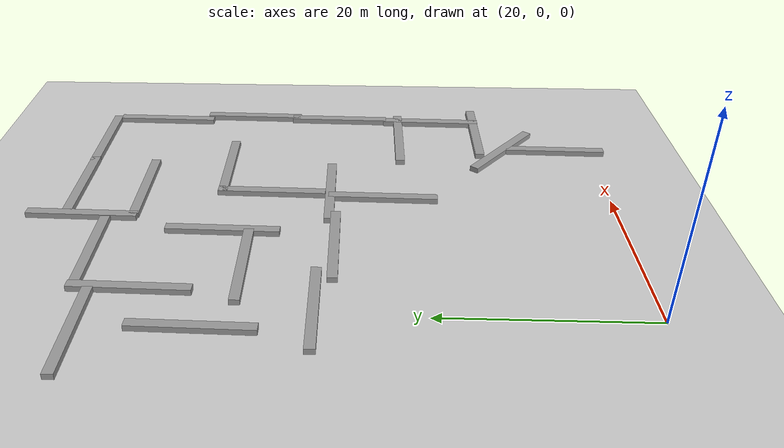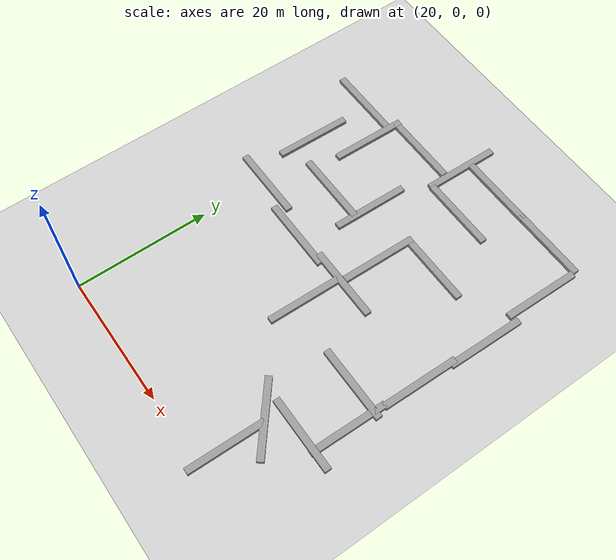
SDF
<sdf version="1.6">
 <world name="default">
  <model name="ground_plane">
   <static>1</static>
   <link name="link">
    <collision name="collision">
     <geometry><plane><normal>0 0 1</normal><size>100 100</size></plane></geometry>
     <surface><friction><ode><mu>100</mu><mu2>50</mu2></ode></friction></surface>
    </collision>
    <visual name="visual">
     <cast_shadows>0</cast_shadows>
     <geometry><plane><normal>0 0 1</normal><size>100 100</size></plane></geometry>
     <material>
      <script><uri>file://media/materials/scripts/gazebo.material</uri><name>Gazebo/Grey</name></script>
     </material>
    </visual>
   </link>
  </model>
  <model name="unit_box_0_static_clone_17">
   <link name="link">
    <inertial>
     <mass>11.3696</mass>
     <inertia><ixx>1.89495</ixx><ixy>0</ixy><ixz>0</ixz><iyy>123.426</iyy><iyz>0</iyz><izz>123.426</izz></inertia>
    </inertial>
    <kinematic>1</kinematic>
    <visual name="visual">
     <geometry><box><size>11.3696 1 1</size></box></geometry>
     <material>
      <script><name>Gazebo/Grey</name><uri>file://media/materials/scripts/gazebo.material</uri></script>
      <ambient>0.3 0.3 0.3 1</ambient>
      <diffuse>0.7 0.7 0.7 1</diffuse>
      <specular>0.01 0.01 0.01 1</specular>
      <emissive>0 0 0 1</emissive>
     </material>
    </visual>
    <collision name="collision">
     <geometry><box><size>11.3696 1 1</size></box></geometry>
     <surface>
      <friction>
       <ode><mu>1</mu><mu2>1</mu2><fdir1>0 0 0</fdir1><slip1>0</slip1><slip2>0</slip2></ode>
       <torsional>
        <coefficient>1</coefficient>
        <patch_radius>0</patch_radius>
        <surface_radius>0</surface_radius>
        <use_patch_radius>1</use_patch_radius>
        <ode><slip>0</slip></ode>
       </torsional>
      </friction>
      <bounce><restitution_coefficient>0</restitution_coefficient><threshold>1e+06</threshold></bounce>
      <contact>
       <collide_without_contact>0</collide_without_contact>
       <collide_without_contact_bitmask>1</collide_without_contact_bitmask>
       <collide_bitmask>1</collide_bitmask>
       <ode>
        <soft_cfm>0</soft_cfm>
        <soft_erp>0.2</soft_erp>
        <kp>1e+13</kp>
        <kd>1</kd>
        <max_vel>0.01</max_vel>
        <min_depth>0</min_depth>
       </ode>
       <bullet>
        <split_impulse>1</split_impulse>
        <split_impulse_penetration_threshold>-0.01</split_impulse_penetration_threshold>
        <soft_cfm>0</soft_cfm>
        <soft_erp>0.2</soft_erp>
        <kp>1e+13</kp>
        <kd>1</kd>
       </bullet>
      </contact>
     </surface>
    </collision>
   </link>
   <static>1</static>
   <pose>40.5658 29.2581 0 0 -0 0</pose>
  </model>
  <model name="unit_box_0_static_clone_18">
   <link name="link">
    <inertial>
     <mass>11.3696</mass>
     <inertia><ixx>1.89495</ixx><ixy>0</ixy><ixz>0</ixz><iyy>123.426</iyy><iyz>0</iyz><izz>123.426</izz></inertia>
    </inertial>
    <kinematic>1</kinematic>
    <visual name="visual">
     <geometry><box><size>11.3696 1 1</size></box></geometry>
     <material>
      <script><name>Gazebo/Grey</name><uri>file://media/materials/scripts/gazebo.material</uri></script>
      <ambient>0.3 0.3 0.3 1</ambient>
      <diffuse>0.7 0.7 0.7 1</diffuse>
      <specular>0.01 0.01 0.01 1</specular>
      <emissive>0 0 0 1</emissive>
     </material>
    </visual>
    <collision name="collision">
     <geometry><box><size>11.3696 1 1</size></box></geometry>
     <surface>
      <friction>
       <ode><mu>1</mu><mu2>1</mu2><fdir1>0 0 0</fdir1><slip1>0</slip1><slip2>0</slip2></ode>
       <torsional>
        <coefficient>1</coefficient>
        <patch_radius>0</patch_radius>
        <surface_radius>0</surface_radius>
        <use_patch_radius>1</use_patch_radius>
        <ode><slip>0</slip></ode>
       </torsional>
      </friction>
      <bounce><restitution_coefficient>0</restitution_coefficient><threshold>1e+06</threshold></bounce>
      <contact>
       <collide_without_contact>0</collide_without_contact>
       <collide_without_contact_bitmask>1</collide_without_contact_bitmask>
       <collide_bitmask>1</collide_bitmask>
       <ode>
        <soft_cfm>0</soft_cfm>
        <soft_erp>0.2</soft_erp>
        <kp>1e+13</kp>
        <kd>1</kd>
        <max_vel>0.01</max_vel>
        <min_depth>0</min_depth>
       </ode>
       <bullet>
        <split_impulse>1</split_impulse>
        <split_impulse_penetration_threshold>-0.01</split_impulse_penetration_threshold>
        <soft_cfm>0</soft_cfm>
        <soft_erp>0.2</soft_erp>
        <kp>1e+13</kp>
        <kd>1</kd>
       </bullet>
      </contact>
     </surface>
    </collision>
   </link>
   <static>1</static>
   <pose>30.56 28.5679 0 0 -0 0</pose>
  </model>
  <model name="unit_box_0_static_clone_19">
   <link name="link">
    <inertial>
     <mass>11.3696</mass>
     <inertia><ixx>1.89495</ixx><ixy>0</ixy><ixz>0</ixz><iyy>123.426</iyy><iyz>0</iyz><izz>123.426</izz></inertia>
    </inertial>
    <kinematic>1</kinematic>
    <visual name="visual">
     <geometry><box><size>11.3696 1 1</size></box></geometry>
     <material>
      <script><name>Gazebo/Grey</name><uri>file://media/materials/scripts/gazebo.material</uri></script>
      <ambient>0.3 0.3 0.3 1</ambient>
      <diffuse>0.7 0.7 0.7 1</diffuse>
      <specular>0.01 0.01 0.01 1</specular>
      <emissive>0 0 0 1</emissive>
     </material>
    </visual>
    <collision name="collision">
     <geometry><box><size>11.3696 1 1</size></box></geometry>
     <surface>
      <friction>
       <ode><mu>1</mu><mu2>1</mu2><fdir1>0 0 0</fdir1><slip1>0</slip1><slip2>0</slip2></ode>
       <torsional>
        <coefficient>1</coefficient>
        <patch_radius>0</patch_radius>
        <surface_radius>0</surface_radius>
        <use_patch_radius>1</use_patch_radius>
        <ode><slip>0</slip></ode>
       </torsional>
      </friction>
      <bounce><restitution_coefficient>0</restitution_coefficient><threshold>1e+06</threshold></bounce>
      <contact>
       <collide_without_contact>0</collide_without_contact>
       <collide_without_contact_bitmask>1</collide_without_contact_bitmask>
       <collide_bitmask>1</collide_bitmask>
       <ode>
        <soft_cfm>0</soft_cfm>
        <soft_erp>0.2</soft_erp>
        <kp>1e+13</kp>
        <kd>1</kd>
        <max_vel>0.01</max_vel>
        <min_depth>0</min_depth>
       </ode>
       <bullet>
        <split_impulse>1</split_impulse>
        <split_impulse_penetration_threshold>-0.01</split_impulse_penetration_threshold>
        <soft_cfm>0</soft_cfm>
        <soft_erp>0.2</soft_erp>
        <kp>1e+13</kp>
        <kd>1</kd>
       </bullet>
      </contact>
     </surface>
    </collision>
   </link>
   <static>1</static>
   <pose>20.7983 30.0679 0 0 -0 0</pose>
  </model>
  <model name="unit_box_0_static_clone_35_clone_11">
   <link name="link">
    <inertial>
     <mass>11.3696</mass>
     <inertia><ixx>1.89495</ixx><ixy>0</ixy><ixz>0</ixz><iyy>123.426</iyy><iyz>0</iyz><izz>123.426</izz></inertia>
    </inertial>
    <kinematic>1</kinematic>
    <visual name="visual">
     <geometry><box><size>11.3696 1 1</size></box></geometry>
     <material>
      <script><name>Gazebo/Grey</name><uri>file://media/materials/scripts/gazebo.material</uri></script>
      <ambient>0.3 0.3 0.3 1</ambient>
      <diffuse>0.7 0.7 0.7 1</diffuse>
      <specular>0.01 0.01 0.01 1</specular>
      <emissive>0 0 0 1</emissive>
     </material>
    </visual>
    <collision name="collision">
     <geometry><box><size>11.3696 1 1</size></box></geometry>
     <surface>
      <friction>
       <ode><mu>1</mu><mu2>1</mu2><fdir1>0 0 0</fdir1><slip1>0</slip1><slip2>0</slip2></ode>
       <torsional>
        <coefficient>1</coefficient>
        <patch_radius>0</patch_radius>
        <surface_radius>0</surface_radius>
        <use_patch_radius>1</use_patch_radius>
        <ode><slip>0</slip></ode>
       </torsional>
      </friction>
      <bounce><restitution_coefficient>0</restitution_coefficient><threshold>1e+06</threshold></bounce>
      <contact>
       <collide_without_contact>0</collide_without_contact>
       <collide_without_contact_bitmask>1</collide_without_contact_bitmask>
       <collide_bitmask>1</collide_bitmask>
       <ode>
        <soft_cfm>0</soft_cfm>
        <soft_erp>0.2</soft_erp>
        <kp>1e+13</kp>
        <kd>1</kd>
        <max_vel>0.01</max_vel>
        <min_depth>0</min_depth>
       </ode>
       <bullet>
        <split_impulse>1</split_impulse>
        <split_impulse_penetration_threshold>-0.01</split_impulse_penetration_threshold>
        <soft_cfm>0</soft_cfm>
        <soft_erp>0.2</soft_erp>
        <kp>1e+13</kp>
        <kd>1</kd>
       </bullet>
      </contact>
     </surface>
    </collision>
   </link>
   <static>1</static>
   <pose>39.5419 23.7447 0 0 0 -1.5917</pose>
  </model>
  <model name="unit_box_0_static_clone_35_clone_12">
   <link name="link">
    <inertial>
     <mass>11.3696</mass>
     <inertia><ixx>1.89495</ixx><ixy>0</ixy><ixz>0</ixz><iyy>123.426</iyy><iyz>0</iyz><izz>123.426</izz></inertia>
    </inertial>
    <kinematic>1</kinematic>
    <visual name="visual">
     <geometry><box><size>11.3696 1 1</size></box></geometry>
     <material>
      <script><name>Gazebo/Grey</name><uri>file://media/materials/scripts/gazebo.material</uri></script>
      <ambient>0.3 0.3 0.3 1</ambient>
      <diffuse>0.7 0.7 0.7 1</diffuse>
      <specular>0.01 0.01 0.01 1</specular>
      <emissive>0 0 0 1</emissive>
     </material>
    </visual>
    <collision name="collision">
     <geometry><box><size>11.3696 1 1</size></box></geometry>
     <surface>
      <friction>
       <ode><mu>1</mu><mu2>1</mu2><fdir1>0 0 0</fdir1><slip1>0</slip1><slip2>0</slip2></ode>
       <torsional>
        <coefficient>1</coefficient>
        <patch_radius>0</patch_radius>
        <surface_radius>0</surface_radius>
        <use_patch_radius>1</use_patch_radius>
        <ode><slip>0</slip></ode>
       </torsional>
      </friction>
      <bounce><restitution_coefficient>0</restitution_coefficient><threshold>1e+06</threshold></bounce>
      <contact>
       <collide_without_contact>0</collide_without_contact>
       <collide_without_contact_bitmask>1</collide_without_contact_bitmask>
       <collide_bitmask>1</collide_bitmask>
       <ode>
        <soft_cfm>0</soft_cfm>
        <soft_erp>0.2</soft_erp>
        <kp>1e+13</kp>
        <kd>1</kd>
        <max_vel>0.01</max_vel>
        <min_depth>0</min_depth>
       </ode>
       <bullet>
        <split_impulse>1</split_impulse>
        <split_impulse_penetration_threshold>-0.01</split_impulse_penetration_threshold>
        <soft_cfm>0</soft_cfm>
        <soft_erp>0.2</soft_erp>
        <kp>1e+13</kp>
        <kd>1</kd>
       </bullet>
      </contact>
     </surface>
    </collision>
   </link>
   <static>1</static>
   <pose>50.6137 4.07902 0 0 0 -1.5917</pose>
  </model>
  <model name="unit_box_0_static_clone_35_clone_20_clone">
   <link name="link">
    <inertial>
     <mass>11.3696</mass>
     <inertia><ixx>1.89495</ixx><ixy>0</ixy><ixz>0</ixz><iyy>123.426</iyy><iyz>0</iyz><izz>123.426</izz></inertia>
    </inertial>
    <kinematic>1</kinematic>
    <visual name="visual">
     <geometry><box><size>11.3696 1 1</size></box></geometry>
     <material>
      <script><name>Gazebo/Grey</name><uri>file://media/materials/scripts/gazebo.material</uri></script>
      <ambient>0.3 0.3 0.3 1</ambient>
      <diffuse>0.7 0.7 0.7 1</diffuse>
      <specular>0.01 0.01 0.01 1</specular>
      <emissive>0 0 0 1</emissive>
     </material>
    </visual>
    <collision name="collision">
     <geometry><box><size>11.3696 1 1</size></box></geometry>
     <surface>
      <friction>
       <ode><mu>1</mu><mu2>1</mu2><fdir1>0 0 0</fdir1><slip1>0</slip1><slip2>0</slip2></ode>
       <torsional>
        <coefficient>1</coefficient>
        <patch_radius>0</patch_radius>
        <surface_radius>0</surface_radius>
        <use_patch_radius>1</use_patch_radius>
        <ode><slip>0</slip></ode>
       </torsional>
      </friction>
      <bounce><restitution_coefficient>0</restitution_coefficient><threshold>1e+06</threshold></bounce>
      <contact>
       <collide_without_contact>0</collide_without_contact>
       <collide_without_contact_bitmask>1</collide_without_contact_bitmask>
       <collide_bitmask>1</collide_bitmask>
       <ode>
        <soft_cfm>0</soft_cfm>
        <soft_erp>0.2</soft_erp>
        <kp>1e+13</kp>
        <kd>1</kd>
        <max_vel>0.01</max_vel>
        <min_depth>0</min_depth>
       </ode>
       <bullet>
        <split_impulse>1</split_impulse>
        <split_impulse_penetration_threshold>-0.01</split_impulse_penetration_threshold>
        <soft_cfm>0</soft_cfm>
        <soft_erp>0.2</soft_erp>
        <kp>1e+13</kp>
        <kd>1</kd>
       </bullet>
      </contact>
     </surface>
    </collision>
   </link>
   <static>1</static>
   <pose>50.3629 9.99872 0 0 -0 2.46018</pose>
  </model>
  <model name="unit_box_0_static_clone_17_clone">
   <link name="link">
    <inertial>
     <mass>11.3696</mass>
     <inertia><ixx>1.89495</ixx><ixy>0</ixy><ixz>0</ixz><iyy>123.426</iyy><iyz>0</iyz><izz>123.426</izz></inertia>
    </inertial>
    <kinematic>1</kinematic>
    <visual name="visual">
     <geometry><box><size>11.3696 1 1</size></box></geometry>
     <material>
      <script><name>Gazebo/Grey</name><uri>file://media/materials/scripts/gazebo.material</uri></script>
      <ambient>0.3 0.3 0.3 1</ambient>
      <diffuse>0.7 0.7 0.7 1</diffuse>
      <specular>0.01 0.01 0.01 1</specular>
      <emissive>0 0 0 1</emissive>
     </material>
    </visual>
    <collision name="collision">
     <geometry><box><size>11.3696 1 1</size></box></geometry>
     <surface>
      <friction>
       <ode><mu>1</mu><mu2>1</mu2><fdir1>0 0 0</fdir1><slip1>0</slip1><slip2>0</slip2></ode>
       <torsional>
        <coefficient>1</coefficient>
        <patch_radius>0</patch_radius>
        <surface_radius>0</surface_radius>
        <use_patch_radius>1</use_patch_radius>
        <ode><slip>0</slip></ode>
       </torsional>
      </friction>
      <bounce><restitution_coefficient>0</restitution_coefficient><threshold>1e+06</threshold></bounce>
      <contact>
       <collide_without_contact>0</collide_without_contact>
       <collide_without_contact_bitmask>1</collide_without_contact_bitmask>
       <collide_bitmask>1</collide_bitmask>
       <ode>
        <soft_cfm>0</soft_cfm>
        <soft_erp>0.2</soft_erp>
        <kp>1e+13</kp>
        <kd>1</kd>
        <max_vel>0.01</max_vel>
        <min_depth>0</min_depth>
       </ode>
       <bullet>
        <split_impulse>1</split_impulse>
        <split_impulse_penetration_threshold>-0.01</split_impulse_penetration_threshold>
        <soft_cfm>0</soft_cfm>
        <soft_erp>0.2</soft_erp>
        <kp>1e+13</kp>
        <kd>1</kd>
       </bullet>
      </contact>
     </surface>
    </collision>
   </link>
   <static>1</static>
   <pose>27.0058 36.996 0 0 -0 0</pose>
  </model>
  <model name="unit_box_0_static_clone_35_clone_11_clone">
   <link name="link">
    <inertial>
     <mass>11.3696</mass>
     <inertia><ixx>1.89495</ixx><ixy>0</ixy><ixz>0</ixz><iyy>123.426</iyy><iyz>0</iyz><izz>123.426</izz></inertia>
    </inertial>
    <kinematic>1</kinematic>
    <visual name="visual">
     <geometry><box><size>11.3696 1 1</size></box></geometry>
     <material>
      <script><name>Gazebo/Grey</name><uri>file://media/materials/scripts/gazebo.material</uri></script>
      <ambient>0.3 0.3 0.3 1</ambient>
      <diffuse>0.7 0.7 0.7 1</diffuse>
      <specular>0.01 0.01 0.01 1</specular>
      <emissive>0 0 0 1</emissive>
     </material>
    </visual>
    <collision name="collision">
     <geometry><box><size>11.3696 1 1</size></box></geometry>
     <surface>
      <friction>
       <ode><mu>1</mu><mu2>1</mu2><fdir1>0 0 0</fdir1><slip1>0</slip1><slip2>0</slip2></ode>
       <torsional>
        <coefficient>1</coefficient>
        <patch_radius>0</patch_radius>
        <surface_radius>0</surface_radius>
        <use_patch_radius>1</use_patch_radius>
        <ode><slip>0</slip></ode>
       </torsional>
      </friction>
      <bounce><restitution_coefficient>0</restitution_coefficient><threshold>1e+06</threshold></bounce>
      <contact>
       <collide_without_contact>0</collide_without_contact>
       <collide_without_contact_bitmask>1</collide_without_contact_bitmask>
       <collide_bitmask>1</collide_bitmask>
       <ode>
        <soft_cfm>0</soft_cfm>
        <soft_erp>0.2</soft_erp>
        <kp>1e+13</kp>
        <kd>1</kd>
        <max_vel>0.01</max_vel>
        <min_depth>0</min_depth>
       </ode>
       <bullet>
        <split_impulse>1</split_impulse>
        <split_impulse_penetration_threshold>-0.01</split_impulse_penetration_threshold>
        <soft_cfm>0</soft_cfm>
        <soft_erp>0.2</soft_erp>
        <kp>1e+13</kp>
        <kd>1</kd>
       </bullet>
      </contact>
     </surface>
    </collision>
   </link>
   <static>1</static>
   <pose>17.9092 40.1985 0 0 0 -1.5917</pose>
  </model>
  <model name="unit_box_0_static_clone_35_clone_11_clone_0">
   <link name="link">
    <inertial>
     <mass>11.3696</mass>
     <inertia><ixx>1.89495</ixx><ixy>0</ixy><ixz>0</ixz><iyy>123.426</iyy><iyz>0</iyz><izz>123.426</izz></inertia>
    </inertial>
    <kinematic>1</kinematic>
    <visual name="visual">
     <geometry><box><size>11.3696 1 1</size></box></geometry>
     <material>
      <script><name>Gazebo/Grey</name><uri>file://media/materials/scripts/gazebo.material</uri></script>
      <ambient>0.3 0.3 0.3 1</ambient>
      <diffuse>0.7 0.7 0.7 1</diffuse>
      <specular>0.01 0.01 0.01 1</specular>
      <emissive>0 0 0 1</emissive>
     </material>
    </visual>
    <collision name="collision">
     <geometry><box><size>11.3696 1 1</size></box></geometry>
     <surface>
      <friction>
       <ode><mu>1</mu><mu2>1</mu2><fdir1>0 0 0</fdir1><slip1>0</slip1><slip2>0</slip2></ode>
       <torsional>
        <coefficient>1</coefficient>
        <patch_radius>0</patch_radius>
        <surface_radius>0</surface_radius>
        <use_patch_radius>1</use_patch_radius>
        <ode><slip>0</slip></ode>
       </torsional>
      </friction>
      <bounce><restitution_coefficient>0</restitution_coefficient><threshold>1e+06</threshold></bounce>
      <contact>
       <collide_without_contact>0</collide_without_contact>
       <collide_without_contact_bitmask>1</collide_without_contact_bitmask>
       <collide_bitmask>1</collide_bitmask>
       <ode>
        <soft_cfm>0</soft_cfm>
        <soft_erp>0.2</soft_erp>
        <kp>1e+13</kp>
        <kd>1</kd>
        <max_vel>0.01</max_vel>
        <min_depth>0</min_depth>
       </ode>
       <bullet>
        <split_impulse>1</split_impulse>
        <split_impulse_penetration_threshold>-0.01</split_impulse_penetration_threshold>
        <soft_cfm>0</soft_cfm>
        <soft_erp>0.2</soft_erp>
        <kp>1e+13</kp>
        <kd>1</kd>
       </bullet>
      </contact>
     </surface>
    </collision>
   </link>
   <static>1</static>
   <pose>23.1638 46.6348 0 0 0 -1.5917</pose>
  </model>
  <model name="unit_box_0_static_clone_35_clone_11_clone_1">
   <link name="link">
    <inertial>
     <mass>11.3696</mass>
     <inertia><ixx>1.89495</ixx><ixy>0</ixy><ixz>0</ixz><iyy>123.426</iyy><iyz>0</iyz><izz>123.426</izz></inertia>
    </inertial>
    <kinematic>1</kinematic>
    <visual name="visual">
     <geometry><box><size>11.3696 1 1</size></box></geometry>
     <material>
      <script><name>Gazebo/Grey</name><uri>file://media/materials/scripts/gazebo.material</uri></script>
      <ambient>0.3 0.3 0.3 1</ambient>
      <diffuse>0.7 0.7 0.7 1</diffuse>
      <specular>0.01 0.01 0.01 1</specular>
      <emissive>0 0 0 1</emissive>
     </material>
    </visual>
    <collision name="collision">
     <geometry><box><size>11.3696 1 1</size></box></geometry>
     <surface>
      <friction>
       <ode><mu>1</mu><mu2>1</mu2><fdir1>0 0 0</fdir1><slip1>0</slip1><slip2>0</slip2></ode>
       <torsional>
        <coefficient>1</coefficient>
        <patch_radius>0</patch_radius>
        <surface_radius>0</surface_radius>
        <use_patch_radius>1</use_patch_radius>
        <ode><slip>0</slip></ode>
       </torsional>
      </friction>
      <bounce><restitution_coefficient>0</restitution_coefficient><threshold>1e+06</threshold></bounce>
      <contact>
       <collide_without_contact>0</collide_without_contact>
       <collide_without_contact_bitmask>1</collide_without_contact_bitmask>
       <collide_bitmask>1</collide_bitmask>
       <ode>
        <soft_cfm>0</soft_cfm>
        <soft_erp>0.2</soft_erp>
        <kp>1e+13</kp>
        <kd>1</kd>
        <max_vel>0.01</max_vel>
        <min_depth>0</min_depth>
       </ode>
       <bullet>
        <split_impulse>1</split_impulse>
        <split_impulse_penetration_threshold>-0.01</split_impulse_penetration_threshold>
        <soft_cfm>0</soft_cfm>
        <soft_erp>0.2</soft_erp>
        <kp>1e+13</kp>
        <kd>1</kd>
       </bullet>
      </contact>
     </surface>
    </collision>
   </link>
   <static>1</static>
   <pose>32.8399 39.6363 0 0 0 -1.5917</pose>
  </model>
  <model name="unit_box_0_static_clone_17_clone_2">
   <link name="link">
    <inertial>
     <mass>11.3696</mass>
     <inertia><ixx>1.89495</ixx><ixy>0</ixy><ixz>0</ixz><iyy>123.426</iyy><iyz>0</iyz><izz>123.426</izz></inertia>
    </inertial>
    <kinematic>1</kinematic>
    <visual name="visual">
     <geometry><box><size>11.3696 1 1</size></box></geometry>
     <material>
      <script><name>Gazebo/Grey</name><uri>file://media/materials/scripts/gazebo.material</uri></script>
      <ambient>0.3 0.3 0.3 1</ambient>
      <diffuse>0.7 0.7 0.7 1</diffuse>
      <specular>0.01 0.01 0.01 1</specular>
      <emissive>0 0 0 1</emissive>
     </material>
    </visual>
    <collision name="collision">
     <geometry><box><size>11.3696 1 1</size></box></geometry>
     <surface>
      <friction>
       <ode><mu>1</mu><mu2>1</mu2><fdir1>0 0 0</fdir1><slip1>0</slip1><slip2>0</slip2></ode>
       <torsional>
        <coefficient>1</coefficient>
        <patch_radius>0</patch_radius>
        <surface_radius>0</surface_radius>
        <use_patch_radius>1</use_patch_radius>
        <ode><slip>0</slip></ode>
       </torsional>
      </friction>
      <bounce><restitution_coefficient>0</restitution_coefficient><threshold>1e+06</threshold></bounce>
      <contact>
       <collide_without_contact>0</collide_without_contact>
       <collide_without_contact_bitmask>1</collide_without_contact_bitmask>
       <collide_bitmask>1</collide_bitmask>
       <ode>
        <soft_cfm>0</soft_cfm>
        <soft_erp>0.2</soft_erp>
        <kp>1e+13</kp>
        <kd>1</kd>
        <max_vel>0.01</max_vel>
        <min_depth>0</min_depth>
       </ode>
       <bullet>
        <split_impulse>1</split_impulse>
        <split_impulse_penetration_threshold>-0.01</split_impulse_penetration_threshold>
        <soft_cfm>0</soft_cfm>
        <soft_erp>0.2</soft_erp>
        <kp>1e+13</kp>
        <kd>1</kd>
       </bullet>
      </contact>
     </surface>
    </collision>
   </link>
   <static>1</static>
   <pose>28.9377 51.7159 0 0 -0 0</pose>
  </model>
  <model name="unit_box_0_static_clone_35_clone_11_clone_1_clone">
   <link name="link">
    <inertial>
     <mass>11.3696</mass>
     <inertia><ixx>1.89495</ixx><ixy>0</ixy><ixz>0</ixz><iyy>123.426</iyy><iyz>0</iyz><izz>123.426</izz></inertia>
    </inertial>
    <kinematic>1</kinematic>
    <visual name="visual">
     <geometry><box><size>11.3696 1 1</size></box></geometry>
     <material>
      <script><name>Gazebo/Grey</name><uri>file://media/materials/scripts/gazebo.material</uri></script>
      <ambient>0.3 0.3 0.3 1</ambient>
      <diffuse>0.7 0.7 0.7 1</diffuse>
      <specular>0.01 0.01 0.01 1</specular>
      <emissive>0 0 0 1</emissive>
     </material>
    </visual>
    <collision name="collision">
     <geometry><box><size>11.3696 1 1</size></box></geometry>
     <surface>
      <friction>
       <ode><mu>1</mu><mu2>1</mu2><fdir1>0 0 0</fdir1><slip1>0</slip1><slip2>0</slip2></ode>
       <torsional>
        <coefficient>1</coefficient>
        <patch_radius>0</patch_radius>
        <surface_radius>0</surface_radius>
        <use_patch_radius>1</use_patch_radius>
        <ode><slip>0</slip></ode>
       </torsional>
      </friction>
      <bounce><restitution_coefficient>0</restitution_coefficient><threshold>1e+06</threshold></bounce>
      <contact>
       <collide_without_contact>0</collide_without_contact>
       <collide_without_contact_bitmask>1</collide_without_contact_bitmask>
       <collide_bitmask>1</collide_bitmask>
       <ode>
        <soft_cfm>0</soft_cfm>
        <soft_erp>0.2</soft_erp>
        <kp>1e+13</kp>
        <kd>1</kd>
        <max_vel>0.01</max_vel>
        <min_depth>0</min_depth>
       </ode>
       <bullet>
        <split_impulse>1</split_impulse>
        <split_impulse_penetration_threshold>-0.01</split_impulse_penetration_threshold>
        <soft_cfm>0</soft_cfm>
        <soft_erp>0.2</soft_erp>
        <kp>1e+13</kp>
        <kd>1</kd>
       </bullet>
      </contact>
     </surface>
    </collision>
   </link>
   <static>1</static>
   <pose>40.3364 35.4671 0 0 0 -1.5917</pose>
  </model>
  <model name="unit_box_0_static_clone_35_clone_11_clone_1_clone_0">
   <link name="link">
    <inertial>
     <mass>11.3696</mass>
     <inertia><ixx>1.89495</ixx><ixy>0</ixy><ixz>0</ixz><iyy>123.426</iyy><iyz>0</iyz><izz>123.426</izz></inertia>
    </inertial>
    <kinematic>1</kinematic>
    <visual name="visual">
     <geometry><box><size>11.3696 1 1</size></box></geometry>
     <material>
      <script><name>Gazebo/Grey</name><uri>file://media/materials/scripts/gazebo.material</uri></script>
      <ambient>0.3 0.3 0.3 1</ambient>
      <diffuse>0.7 0.7 0.7 1</diffuse>
      <specular>0.01 0.01 0.01 1</specular>
      <emissive>0 0 0 1</emissive>
     </material>
    </visual>
    <collision name="collision">
     <geometry><box><size>11.3696 1 1</size></box></geometry>
     <surface>
      <friction>
       <ode><mu>1</mu><mu2>1</mu2><fdir1>0 0 0</fdir1><slip1>0</slip1><slip2>0</slip2></ode>
       <torsional>
        <coefficient>1</coefficient>
        <patch_radius>0</patch_radius>
        <surface_radius>0</surface_radius>
        <use_patch_radius>1</use_patch_radius>
        <ode><slip>0</slip></ode>
       </torsional>
      </friction>
      <bounce><restitution_coefficient>0</restitution_coefficient><threshold>1e+06</threshold></bounce>
      <contact>
       <collide_without_contact>0</collide_without_contact>
       <collide_without_contact_bitmask>1</collide_without_contact_bitmask>
       <collide_bitmask>1</collide_bitmask>
       <ode>
        <soft_cfm>0</soft_cfm>
        <soft_erp>0.2</soft_erp>
        <kp>1e+13</kp>
        <kd>1</kd>
        <max_vel>0.01</max_vel>
        <min_depth>0</min_depth>
       </ode>
       <bullet>
        <split_impulse>1</split_impulse>
        <split_impulse_penetration_threshold>-0.01</split_impulse_penetration_threshold>
        <soft_cfm>0</soft_cfm>
        <soft_erp>0.2</soft_erp>
        <kp>1e+13</kp>
        <kd>1</kd>
       </bullet>
      </contact>
     </surface>
    </collision>
   </link>
   <static>1</static>
   <pose>35.2511 54.317 0 0 0 -1.5917</pose>
  </model>
  <model name="unit_box_0_static_clone_17_clone_3">
   <link name="link">
    <inertial>
     <mass>11.3696</mass>
     <inertia><ixx>1.89495</ixx><ixy>0</ixy><ixz>0</ixz><iyy>123.426</iyy><iyz>0</iyz><izz>123.426</izz></inertia>
    </inertial>
    <kinematic>1</kinematic>
    <visual name="visual">
     <geometry><box><size>11.3696 1 1</size></box></geometry>
     <material>
      <script><name>Gazebo/Grey</name><uri>file://media/materials/scripts/gazebo.material</uri></script>
      <ambient>0.3 0.3 0.3 1</ambient>
      <diffuse>0.7 0.7 0.7 1</diffuse>
      <specular>0.01 0.01 0.01 1</specular>
      <emissive>0 0 0 1</emissive>
     </material>
    </visual>
    <collision name="collision">
     <geometry><box><size>11.3696 1 1</size></box></geometry>
     <surface>
      <friction>
       <ode><mu>1</mu><mu2>1</mu2><fdir1>0 0 0</fdir1><slip1>0</slip1><slip2>0</slip2></ode>
       <torsional>
        <coefficient>1</coefficient>
        <patch_radius>0</patch_radius>
        <surface_radius>0</surface_radius>
        <use_patch_radius>1</use_patch_radius>
        <ode><slip>0</slip></ode>
       </torsional>
      </friction>
      <bounce><restitution_coefficient>0</restitution_coefficient><threshold>1e+06</threshold></bounce>
      <contact>
       <collide_without_contact>0</collide_without_contact>
       <collide_without_contact_bitmask>1</collide_without_contact_bitmask>
       <collide_bitmask>1</collide_bitmask>
       <ode>
        <soft_cfm>0</soft_cfm>
        <soft_erp>0.2</soft_erp>
        <kp>1e+13</kp>
        <kd>1</kd>
        <max_vel>0.01</max_vel>
        <min_depth>0</min_depth>
       </ode>
       <bullet>
        <split_impulse>1</split_impulse>
        <split_impulse_penetration_threshold>-0.01</split_impulse_penetration_threshold>
        <soft_cfm>0</soft_cfm>
        <soft_erp>0.2</soft_erp>
        <kp>1e+13</kp>
        <kd>1</kd>
       </bullet>
      </contact>
     </surface>
    </collision>
   </link>
   <static>1</static>
   <pose>45.6785 40.6306 0 0 -0 0</pose>
  </model>
  <model name="unit_box_0_static_clone_17_clone_4">
   <link name="link">
    <inertial>
     <mass>11.3696</mass>
     <inertia><ixx>1.89495</ixx><ixy>0</ixy><ixz>0</ixz><iyy>123.426</iyy><iyz>0</iyz><izz>123.426</izz></inertia>
    </inertial>
    <kinematic>1</kinematic>
    <visual name="visual">
     <geometry><box><size>11.3696 1 1</size></box></geometry>
     <material>
      <script><name>Gazebo/Grey</name><uri>file://media/materials/scripts/gazebo.material</uri></script>
      <ambient>0.3 0.3 0.3 1</ambient>
      <diffuse>0.7 0.7 0.7 1</diffuse>
      <specular>0.01 0.01 0.01 1</specular>
      <emissive>0 0 0 1</emissive>
     </material>
    </visual>
    <collision name="collision">
     <geometry><box><size>11.3696 1 1</size></box></geometry>
     <surface>
      <friction>
       <ode><mu>1</mu><mu2>1</mu2><fdir1>0 0 0</fdir1><slip1>0</slip1><slip2>0</slip2></ode>
       <torsional>
        <coefficient>1</coefficient>
        <patch_radius>0</patch_radius>
        <surface_radius>0</surface_radius>
        <use_patch_radius>1</use_patch_radius>
        <ode><slip>0</slip></ode>
       </torsional>
      </friction>
      <bounce><restitution_coefficient>0</restitution_coefficient><threshold>1e+06</threshold></bounce>
      <contact>
       <collide_without_contact>0</collide_without_contact>
       <collide_without_contact_bitmask>1</collide_without_contact_bitmask>
       <collide_bitmask>1</collide_bitmask>
       <ode>
        <soft_cfm>0</soft_cfm>
        <soft_erp>0.2</soft_erp>
        <kp>1e+13</kp>
        <kd>1</kd>
        <max_vel>0.01</max_vel>
        <min_depth>0</min_depth>
       </ode>
       <bullet>
        <split_impulse>1</split_impulse>
        <split_impulse_penetration_threshold>-0.01</split_impulse_penetration_threshold>
        <soft_cfm>0</soft_cfm>
        <soft_erp>0.2</soft_erp>
        <kp>1e+13</kp>
        <kd>1</kd>
       </bullet>
      </contact>
     </surface>
    </collision>
   </link>
   <static>1</static>
   <pose>40.8842 49.0065 0 0 -0 0</pose>
  </model>
  <model name="unit_box_0_static_clone_17_clone_5">
   <link name="link">
    <inertial>
     <mass>11.3696</mass>
     <inertia><ixx>1.89495</ixx><ixy>0</ixy><ixz>0</ixz><iyy>123.426</iyy><iyz>0</iyz><izz>123.426</izz></inertia>
    </inertial>
    <kinematic>1</kinematic>
    <visual name="visual">
     <geometry><box><size>11.3696 1 1</size></box></geometry>
     <material>
      <script><name>Gazebo/Grey</name><uri>file://media/materials/scripts/gazebo.material</uri></script>
      <ambient>0.3 0.3 0.3 1</ambient>
      <diffuse>0.7 0.7 0.7 1</diffuse>
      <specular>0.01 0.01 0.01 1</specular>
      <emissive>0 0 0 1</emissive>
     </material>
    </visual>
    <collision name="collision">
     <geometry><box><size>11.3696 1 1</size></box></geometry>
     <surface>
      <friction>
       <ode><mu>1</mu><mu2>1</mu2><fdir1>0 0 0</fdir1><slip1>0</slip1><slip2>0</slip2></ode>
       <torsional>
        <coefficient>1</coefficient>
        <patch_radius>0</patch_radius>
        <surface_radius>0</surface_radius>
        <use_patch_radius>1</use_patch_radius>
        <ode><slip>0</slip></ode>
       </torsional>
      </friction>
      <bounce><restitution_coefficient>0</restitution_coefficient><threshold>1e+06</threshold></bounce>
      <contact>
       <collide_without_contact>0</collide_without_contact>
       <collide_without_contact_bitmask>1</collide_without_contact_bitmask>
       <collide_bitmask>1</collide_bitmask>
       <ode>
        <soft_cfm>0</soft_cfm>
        <soft_erp>0.2</soft_erp>
        <kp>1e+13</kp>
        <kd>1</kd>
        <max_vel>0.01</max_vel>
        <min_depth>0</min_depth>
       </ode>
       <bullet>
        <split_impulse>1</split_impulse>
        <split_impulse_penetration_threshold>-0.01</split_impulse_penetration_threshold>
        <soft_cfm>0</soft_cfm>
        <soft_erp>0.2</soft_erp>
        <kp>1e+13</kp>
        <kd>1</kd>
       </bullet>
      </contact>
     </surface>
    </collision>
   </link>
   <static>1</static>
   <pose>41.2991 55.9353 0 0 -0 0</pose>
  </model>
  <model name="unit_box_0_static_clone_17_clone_6">
   <link name="link">
    <inertial>
     <mass>11.3696</mass>
     <inertia><ixx>1.89495</ixx><ixy>0</ixy><ixz>0</ixz><iyy>123.426</iyy><iyz>0</iyz><izz>123.426</izz></inertia>
    </inertial>
    <kinematic>1</kinematic>
    <visual name="visual">
     <geometry><box><size>11.3696 1 1</size></box></geometry>
     <material>
      <script><name>Gazebo/Grey</name><uri>file://media/materials/scripts/gazebo.material</uri></script>
      <ambient>0.3 0.3 0.3 1</ambient>
      <diffuse>0.7 0.7 0.7 1</diffuse>
      <specular>0.01 0.01 0.01 1</specular>
      <emissive>0 0 0 1</emissive>
     </material>
    </visual>
    <collision name="collision">
     <geometry><box><size>11.3696 1 1</size></box></geometry>
     <surface>
      <friction>
       <ode><mu>1</mu><mu2>1</mu2><fdir1>0 0 0</fdir1><slip1>0</slip1><slip2>0</slip2></ode>
       <torsional>
        <coefficient>1</coefficient>
        <patch_radius>0</patch_radius>
        <surface_radius>0</surface_radius>
        <use_patch_radius>1</use_patch_radius>
        <ode><slip>0</slip></ode>
       </torsional>
      </friction>
      <bounce><restitution_coefficient>0</restitution_coefficient><threshold>1e+06</threshold></bounce>
      <contact>
       <collide_without_contact>0</collide_without_contact>
       <collide_without_contact_bitmask>1</collide_without_contact_bitmask>
       <collide_bitmask>1</collide_bitmask>
       <ode>
        <soft_cfm>0</soft_cfm>
        <soft_erp>0.2</soft_erp>
        <kp>1e+13</kp>
        <kd>1</kd>
        <max_vel>0.01</max_vel>
        <min_depth>0</min_depth>
       </ode>
       <bullet>
        <split_impulse>1</split_impulse>
        <split_impulse_penetration_threshold>-0.01</split_impulse_penetration_threshold>
        <soft_cfm>0</soft_cfm>
        <soft_erp>0.2</soft_erp>
        <kp>1e+13</kp>
        <kd>1</kd>
       </bullet>
      </contact>
     </surface>
    </collision>
   </link>
   <static>1</static>
   <pose>51.9984 55.968 0 0 -0 0</pose>
  </model>
  <model name="unit_box_0_static_clone_35_clone_11_clone_1_clone_1">
   <link name="link">
    <inertial>
     <mass>11.3696</mass>
     <inertia><ixx>1.89495</ixx><ixy>0</ixy><ixz>0</ixz><iyy>123.426</iyy><iyz>0</iyz><izz>123.426</izz></inertia>
    </inertial>
    <kinematic>1</kinematic>
    <visual name="visual">
     <geometry><box><size>11.3696 1 1</size></box></geometry>
     <material>
      <script><name>Gazebo/Grey</name><uri>file://media/materials/scripts/gazebo.material</uri></script>
      <ambient>0.3 0.3 0.3 1</ambient>
      <diffuse>0.7 0.7 0.7 1</diffuse>
      <specular>0.01 0.01 0.01 1</specular>
      <emissive>0 0 0 1</emissive>
     </material>
    </visual>
    <collision name="collision">
     <geometry><box><size>11.3696 1 1</size></box></geometry>
     <surface>
      <friction>
       <ode><mu>1</mu><mu2>1</mu2><fdir1>0 0 0</fdir1><slip1>0</slip1><slip2>0</slip2></ode>
       <torsional>
        <coefficient>1</coefficient>
        <patch_radius>0</patch_radius>
        <surface_radius>0</surface_radius>
        <use_patch_radius>1</use_patch_radius>
        <ode><slip>0</slip></ode>
       </torsional>
      </friction>
      <bounce><restitution_coefficient>0</restitution_coefficient><threshold>1e+06</threshold></bounce>
      <contact>
       <collide_without_contact>0</collide_without_contact>
       <collide_without_contact_bitmask>1</collide_without_contact_bitmask>
       <collide_bitmask>1</collide_bitmask>
       <ode>
        <soft_cfm>0</soft_cfm>
        <soft_erp>0.2</soft_erp>
        <kp>1e+13</kp>
        <kd>1</kd>
        <max_vel>0.01</max_vel>
        <min_depth>0</min_depth>
       </ode>
       <bullet>
        <split_impulse>1</split_impulse>
        <split_impulse_penetration_threshold>-0.01</split_impulse_penetration_threshold>
        <soft_cfm>0</soft_cfm>
        <soft_erp>0.2</soft_erp>
        <kp>1e+13</kp>
        <kd>1</kd>
       </bullet>
      </contact>
     </surface>
    </collision>
   </link>
   <static>1</static>
   <pose>57.5015 49.8177 0 0 0 -1.5917</pose>
  </model>
  <model name="unit_box_0_static_clone_35_clone_11_clone_1_clone_2">
   <link name="link">
    <inertial>
     <mass>11.3696</mass>
     <inertia><ixx>1.89495</ixx><ixy>0</ixy><ixz>0</ixz><iyy>123.426</iyy><iyz>0</iyz><izz>123.426</izz></inertia>
    </inertial>
    <kinematic>1</kinematic>
    <visual name="visual">
     <geometry><box><size>11.3696 1 1</size></box></geometry>
     <material>
      <script><name>Gazebo/Grey</name><uri>file://media/materials/scripts/gazebo.material</uri></script>
      <ambient>0.3 0.3 0.3 1</ambient>
      <diffuse>0.7 0.7 0.7 1</diffuse>
      <specular>0.01 0.01 0.01 1</specular>
      <emissive>0 0 0 1</emissive>
     </material>
    </visual>
    <collision name="collision">
     <geometry><box><size>11.3696 1 1</size></box></geometry>
     <surface>
      <friction>
       <ode><mu>1</mu><mu2>1</mu2><fdir1>0 0 0</fdir1><slip1>0</slip1><slip2>0</slip2></ode>
       <torsional>
        <coefficient>1</coefficient>
        <patch_radius>0</patch_radius>
        <surface_radius>0</surface_radius>
        <use_patch_radius>1</use_patch_radius>
        <ode><slip>0</slip></ode>
       </torsional>
      </friction>
      <bounce><restitution_coefficient>0</restitution_coefficient><threshold>1e+06</threshold></bounce>
      <contact>
       <collide_without_contact>0</collide_without_contact>
       <collide_without_contact_bitmask>1</collide_without_contact_bitmask>
       <collide_bitmask>1</collide_bitmask>
       <ode>
        <soft_cfm>0</soft_cfm>
        <soft_erp>0.2</soft_erp>
        <kp>1e+13</kp>
        <kd>1</kd>
        <max_vel>0.01</max_vel>
        <min_depth>0</min_depth>
       </ode>
       <bullet>
        <split_impulse>1</split_impulse>
        <split_impulse_penetration_threshold>-0.01</split_impulse_penetration_threshold>
        <soft_cfm>0</soft_cfm>
        <soft_erp>0.2</soft_erp>
        <kp>1e+13</kp>
        <kd>1</kd>
       </bullet>
      </contact>
     </surface>
    </collision>
   </link>
   <static>1</static>
   <pose>58.5291 39.176 0 0 0 -1.5917</pose>
  </model>
  <model name="unit_box_0_static_clone_35_clone_11_clone_1_clone_3">
   <link name="link">
    <inertial>
     <mass>11.3696</mass>
     <inertia><ixx>1.89495</ixx><ixy>0</ixy><ixz>0</ixz><iyy>123.426</iyy><iyz>0</iyz><izz>123.426</izz></inertia>
    </inertial>
    <kinematic>1</kinematic>
    <visual name="visual">
     <geometry><box><size>11.3696 1 1</size></box></geometry>
     <material>
      <script><name>Gazebo/Grey</name><uri>file://media/materials/scripts/gazebo.material</uri></script>
      <ambient>0.3 0.3 0.3 1</ambient>
      <diffuse>0.7 0.7 0.7 1</diffuse>
      <specular>0.01 0.01 0.01 1</specular>
      <emissive>0 0 0 1</emissive>
     </material>
    </visual>
    <collision name="collision">
     <geometry><box><size>11.3696 1 1</size></box></geometry>
     <surface>
      <friction>
       <ode><mu>1</mu><mu2>1</mu2><fdir1>0 0 0</fdir1><slip1>0</slip1><slip2>0</slip2></ode>
       <torsional>
        <coefficient>1</coefficient>
        <patch_radius>0</patch_radius>
        <surface_radius>0</surface_radius>
        <use_patch_radius>1</use_patch_radius>
        <ode><slip>0</slip></ode>
       </torsional>
      </friction>
      <bounce><restitution_coefficient>0</restitution_coefficient><threshold>1e+06</threshold></bounce>
      <contact>
       <collide_without_contact>0</collide_without_contact>
       <collide_without_contact_bitmask>1</collide_without_contact_bitmask>
       <collide_bitmask>1</collide_bitmask>
       <ode>
        <soft_cfm>0</soft_cfm>
        <soft_erp>0.2</soft_erp>
        <kp>1e+13</kp>
        <kd>1</kd>
        <max_vel>0.01</max_vel>
        <min_depth>0</min_depth>
       </ode>
       <bullet>
        <split_impulse>1</split_impulse>
        <split_impulse_penetration_threshold>-0.01</split_impulse_penetration_threshold>
        <soft_cfm>0</soft_cfm>
        <soft_erp>0.2</soft_erp>
        <kp>1e+13</kp>
        <kd>1</kd>
       </bullet>
      </contact>
     </surface>
    </collision>
   </link>
   <static>1</static>
   <pose>57.9747 28.7682 0 0 0 -1.5917</pose>
  </model>
  <model name="unit_box_0_static_clone_35_clone_11_clone_1_clone_4">
   <link name="link">
    <inertial>
     <mass>11.3696</mass>
     <inertia><ixx>1.89495</ixx><ixy>0</ixy><ixz>0</ixz><iyy>123.426</iyy><iyz>0</iyz><izz>123.426</izz></inertia>
    </inertial>
    <kinematic>1</kinematic>
    <visual name="visual">
     <geometry><box><size>11.3696 1 1</size></box></geometry>
     <material>
      <script><name>Gazebo/Grey</name><uri>file://media/materials/scripts/gazebo.material</uri></script>
      <ambient>0.3 0.3 0.3 1</ambient>
      <diffuse>0.7 0.7 0.7 1</diffuse>
      <specular>0.01 0.01 0.01 1</specular>
      <emissive>0 0 0 1</emissive>
     </material>
    </visual>
    <collision name="collision">
     <geometry><box><size>11.3696 1 1</size></box></geometry>
     <surface>
      <friction>
       <ode><mu>1</mu><mu2>1</mu2><fdir1>0 0 0</fdir1><slip1>0</slip1><slip2>0</slip2></ode>
       <torsional>
        <coefficient>1</coefficient>
        <patch_radius>0</patch_radius>
        <surface_radius>0</surface_radius>
        <use_patch_radius>1</use_patch_radius>
        <ode><slip>0</slip></ode>
       </torsional>
      </friction>
      <bounce><restitution_coefficient>0</restitution_coefficient><threshold>1e+06</threshold></bounce>
      <contact>
       <collide_without_contact>0</collide_without_contact>
       <collide_without_contact_bitmask>1</collide_without_contact_bitmask>
       <collide_bitmask>1</collide_bitmask>
       <ode>
        <soft_cfm>0</soft_cfm>
        <soft_erp>0.2</soft_erp>
        <kp>1e+13</kp>
        <kd>1</kd>
        <max_vel>0.01</max_vel>
        <min_depth>0</min_depth>
       </ode>
       <bullet>
        <split_impulse>1</split_impulse>
        <split_impulse_penetration_threshold>-0.01</split_impulse_penetration_threshold>
        <soft_cfm>0</soft_cfm>
        <soft_erp>0.2</soft_erp>
        <kp>1e+13</kp>
        <kd>1</kd>
       </bullet>
      </contact>
     </surface>
    </collision>
   </link>
   <static>1</static>
   <pose>57.5454 17.7039 0 0 0 -1.5917</pose>
  </model>
  <model name="unit_box_0_static_clone_18_clone">
   <link name="link">
    <inertial>
     <mass>11.3696</mass>
     <inertia><ixx>1.89495</ixx><ixy>0</ixy><ixz>0</ixz><iyy>123.426</iyy><iyz>0</iyz><izz>123.426</izz></inertia>
    </inertial>
    <kinematic>1</kinematic>
    <visual name="visual">
     <geometry><box><size>11.3696 1 1</size></box></geometry>
     <material>
      <script><name>Gazebo/Grey</name><uri>file://media/materials/scripts/gazebo.material</uri></script>
      <ambient>0.3 0.3 0.3 1</ambient>
      <diffuse>0.7 0.7 0.7 1</diffuse>
      <specular>0.01 0.01 0.01 1</specular>
      <emissive>0 0 0 1</emissive>
     </material>
    </visual>
    <collision name="collision">
     <geometry><box><size>11.3696 1 1</size></box></geometry>
     <surface>
      <friction>
       <ode><mu>1</mu><mu2>1</mu2><fdir1>0 0 0</fdir1><slip1>0</slip1><slip2>0</slip2></ode>
       <torsional>
        <coefficient>1</coefficient>
        <patch_radius>0</patch_radius>
        <surface_radius>0</surface_radius>
        <use_patch_radius>1</use_patch_radius>
        <ode><slip>0</slip></ode>
       </torsional>
      </friction>
      <bounce><restitution_coefficient>0</restitution_coefficient><threshold>1e+06</threshold></bounce>
      <contact>
       <collide_without_contact>0</collide_without_contact>
       <collide_without_contact_bitmask>1</collide_without_contact_bitmask>
       <collide_bitmask>1</collide_bitmask>
       <ode>
        <soft_cfm>0</soft_cfm>
        <soft_erp>0.2</soft_erp>
        <kp>1e+13</kp>
        <kd>1</kd>
        <max_vel>0.01</max_vel>
        <min_depth>0</min_depth>
       </ode>
       <bullet>
        <split_impulse>1</split_impulse>
        <split_impulse_penetration_threshold>-0.01</split_impulse_penetration_threshold>
        <soft_cfm>0</soft_cfm>
        <soft_erp>0.2</soft_erp>
        <kp>1e+13</kp>
        <kd>1</kd>
       </bullet>
      </contact>
     </surface>
    </collision>
   </link>
   <static>1</static>
   <pose>54.7877 12.5748 0 0 -0 0</pose>
  </model>
  <model name="unit_box_0_static_clone_18_clone_0">
   <link name="link">
    <inertial>
     <mass>11.3696</mass>
     <inertia><ixx>1.89495</ixx><ixy>0</ixy><ixz>0</ixz><iyy>123.426</iyy><iyz>0</iyz><izz>123.426</izz></inertia>
    </inertial>
    <kinematic>1</kinematic>
    <visual name="visual">
     <geometry><box><size>11.3696 1 1</size></box></geometry>
     <material>
      <script><name>Gazebo/Grey</name><uri>file://media/materials/scripts/gazebo.material</uri></script>
      <ambient>0.3 0.3 0.3 1</ambient>
      <diffuse>0.7 0.7 0.7 1</diffuse>
      <specular>0.01 0.01 0.01 1</specular>
      <emissive>0 0 0 1</emissive>
     </material>
    </visual>
    <collision name="collision">
     <geometry><box><size>11.3696 1 1</size></box></geometry>
     <surface>
      <friction>
       <ode><mu>1</mu><mu2>1</mu2><fdir1>0 0 0</fdir1><slip1>0</slip1><slip2>0</slip2></ode>
       <torsional>
        <coefficient>1</coefficient>
        <patch_radius>0</patch_radius>
        <surface_radius>0</surface_radius>
        <use_patch_radius>1</use_patch_radius>
        <ode><slip>0</slip></ode>
       </torsional>
      </friction>
      <bounce><restitution_coefficient>0</restitution_coefficient><threshold>1e+06</threshold></bounce>
      <contact>
       <collide_without_contact>0</collide_without_contact>
       <collide_without_contact_bitmask>1</collide_without_contact_bitmask>
       <collide_bitmask>1</collide_bitmask>
       <ode>
        <soft_cfm>0</soft_cfm>
        <soft_erp>0.2</soft_erp>
        <kp>1e+13</kp>
        <kd>1</kd>
        <max_vel>0.01</max_vel>
        <min_depth>0</min_depth>
       </ode>
       <bullet>
        <split_impulse>1</split_impulse>
        <split_impulse_penetration_threshold>-0.01</split_impulse_penetration_threshold>
        <soft_cfm>0</soft_cfm>
        <soft_erp>0.2</soft_erp>
        <kp>1e+13</kp>
        <kd>1</kd>
       </bullet>
      </contact>
     </surface>
    </collision>
   </link>
   <static>1</static>
   <pose>53.0428 21.6628 0 0 -0 0</pose>
  </model>
  <model name="unit_box_0_static_clone_17_clone_0_clone">
   <link name="link">
    <inertial>
     <mass>11.3696</mass>
     <inertia><ixx>1.89495</ixx><ixy>0</ixy><ixz>0</ixz><iyy>123.426</iyy><iyz>0</iyz><izz>123.426</izz></inertia>
    </inertial>
    <kinematic>1</kinematic>
    <visual name="visual">
     <geometry><box><size>11.3696 1 1</size></box></geometry>
     <material>
      <script><name>Gazebo/Grey</name><uri>file://media/materials/scripts/gazebo.material</uri></script>
      <ambient>0.3 0.3 0.3 1</ambient>
      <diffuse>0.7 0.7 0.7 1</diffuse>
      <specular>0.01 0.01 0.01 1</specular>
      <emissive>0 0 0 1</emissive>
     </material>
    </visual>
    <collision name="collision">
     <geometry><box><size>11.3696 1 1</size></box></geometry>
     <surface>
      <friction>
       <ode><mu>1</mu><mu2>1</mu2><fdir1>0 0 0</fdir1><slip1>0</slip1><slip2>0</slip2></ode>
       <torsional>
        <coefficient>1</coefficient>
        <patch_radius>0</patch_radius>
        <surface_radius>0</surface_radius>
        <use_patch_radius>1</use_patch_radius>
        <ode><slip>0</slip></ode>
       </torsional>
      </friction>
      <bounce><restitution_coefficient>0</restitution_coefficient><threshold>1e+06</threshold></bounce>
      <contact>
       <collide_without_contact>0</collide_without_contact>
       <collide_without_contact_bitmask>1</collide_without_contact_bitmask>
       <collide_bitmask>1</collide_bitmask>
       <ode>
        <soft_cfm>0</soft_cfm>
        <soft_erp>0.2</soft_erp>
        <kp>1e+13</kp>
        <kd>1</kd>
        <max_vel>0.01</max_vel>
        <min_depth>0</min_depth>
       </ode>
       <bullet>
        <split_impulse>1</split_impulse>
        <split_impulse_penetration_threshold>-0.01</split_impulse_penetration_threshold>
        <soft_cfm>0</soft_cfm>
        <soft_erp>0.2</soft_erp>
        <kp>1e+13</kp>
        <kd>1</kd>
       </bullet>
      </contact>
     </surface>
    </collision>
   </link>
   <static>1</static>
   <pose>17.1745 50.2608 0 0 -0 0</pose>
  </model>
 </world>
</sdf>
